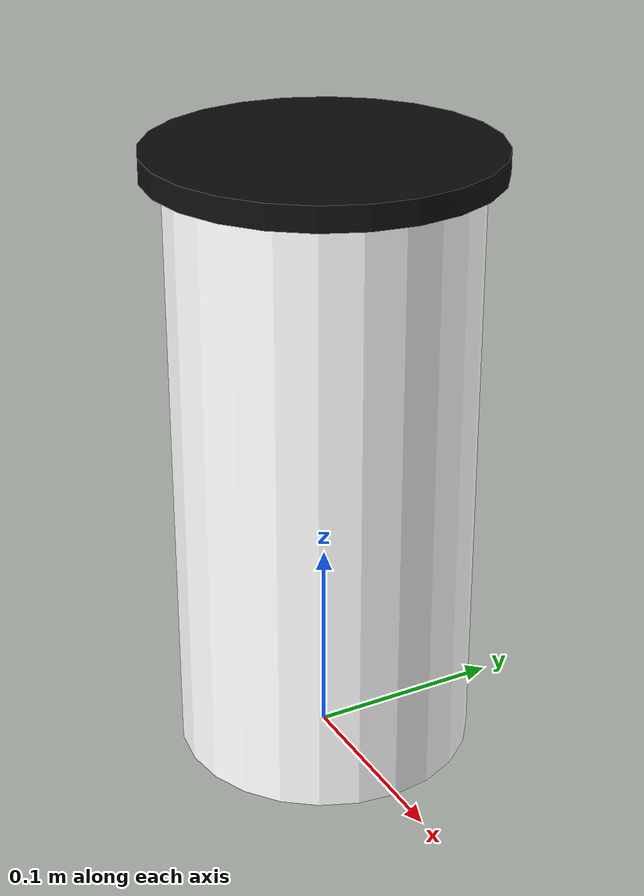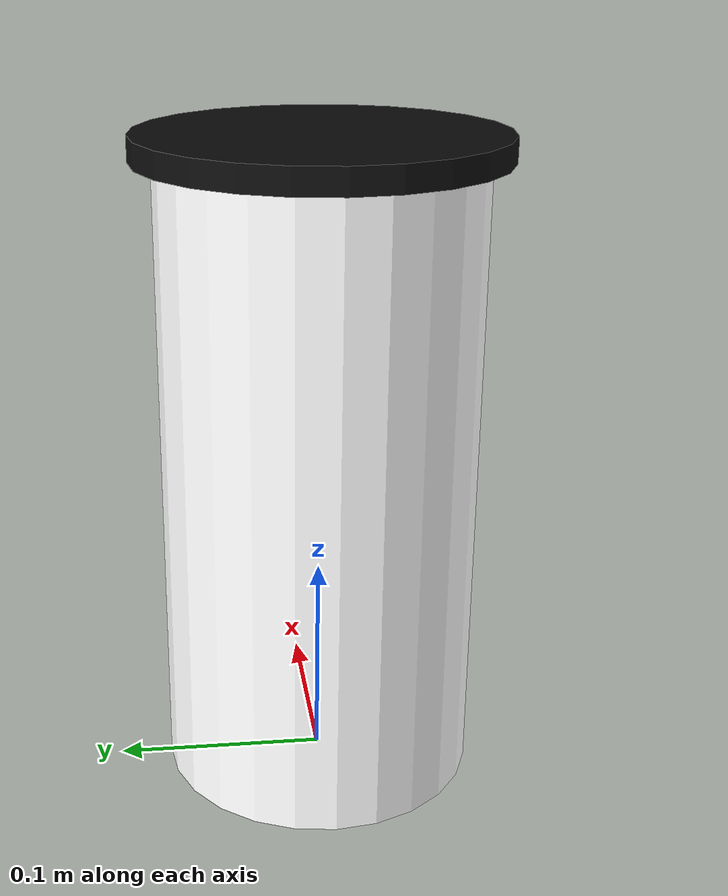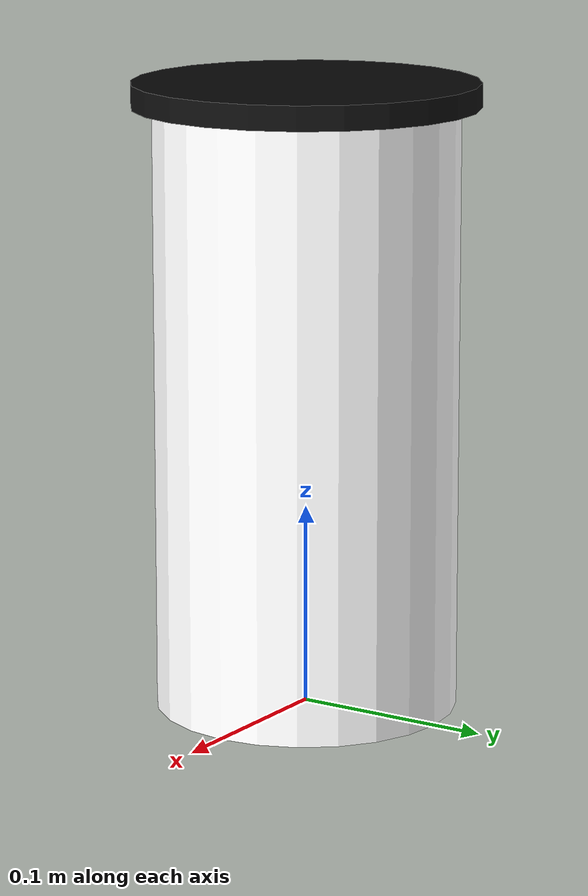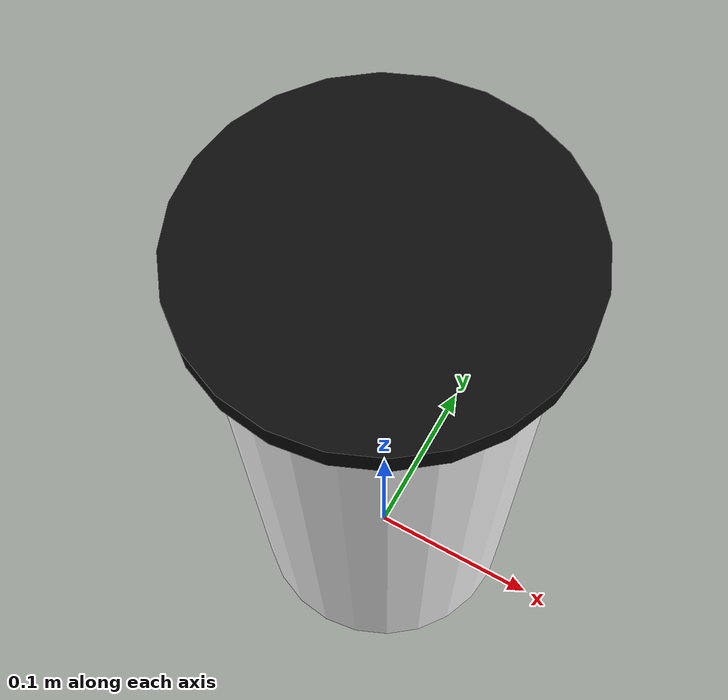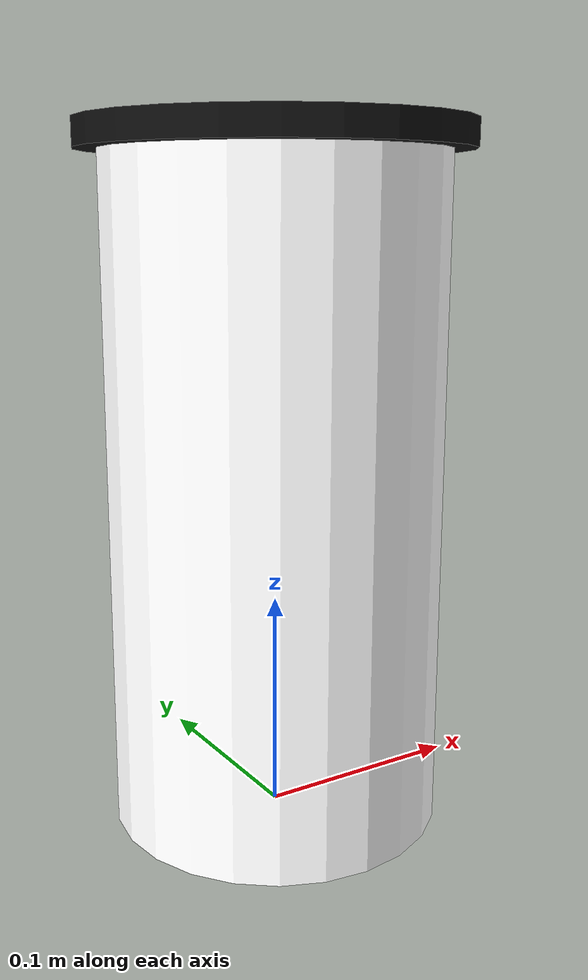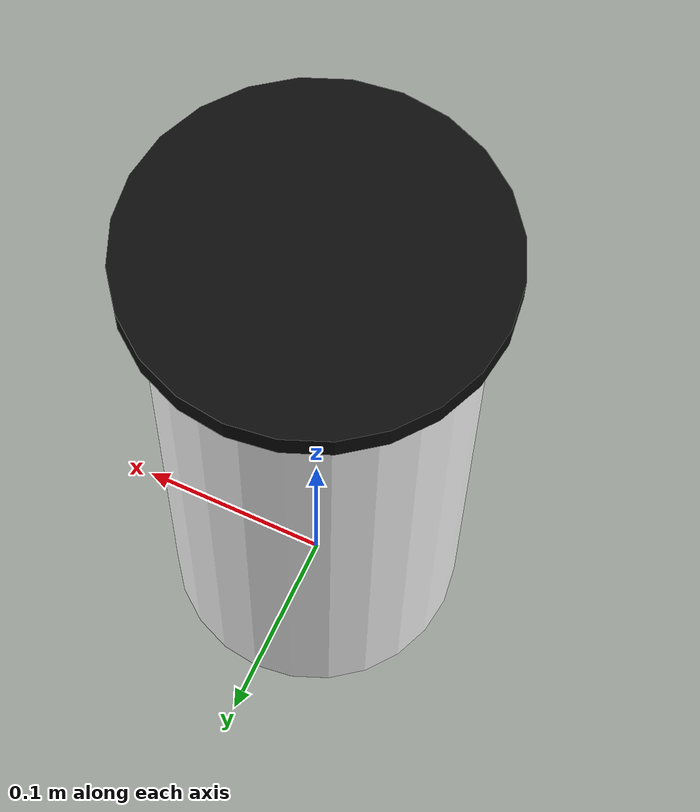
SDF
<?xml version="1.0"?>
<sdf version="1.9">
  <model name="drop_bucket_15">
    <static>true</static>
    <link name="link">
      <visual name="body">
        <pose>0 0 0.15 0 0 0</pose>
        <geometry><cylinder><radius>0.075</radius><length>0.30</length></cylinder></geometry>
        <material><ambient>1 1 1 1</ambient><diffuse>1 1 1 1</diffuse></material>
      </visual>
      <visual name="rim">
        <pose>0 0 0.305 0 0 0</pose>
        <geometry><cylinder><radius>0.085</radius><length>0.012</length></cylinder></geometry>
        <material><ambient>0.05 0.05 0.05 1</ambient><diffuse>0.05 0.05 0.05 1</diffuse></material>
      </visual>
      <collision name="collision">
        <pose>0 0 0.15 0 0 0</pose>
        <geometry><cylinder><radius>0.075</radius><length>0.30</length></cylinder></geometry>
      </collision>
    </link>
  </model>
</sdf>
